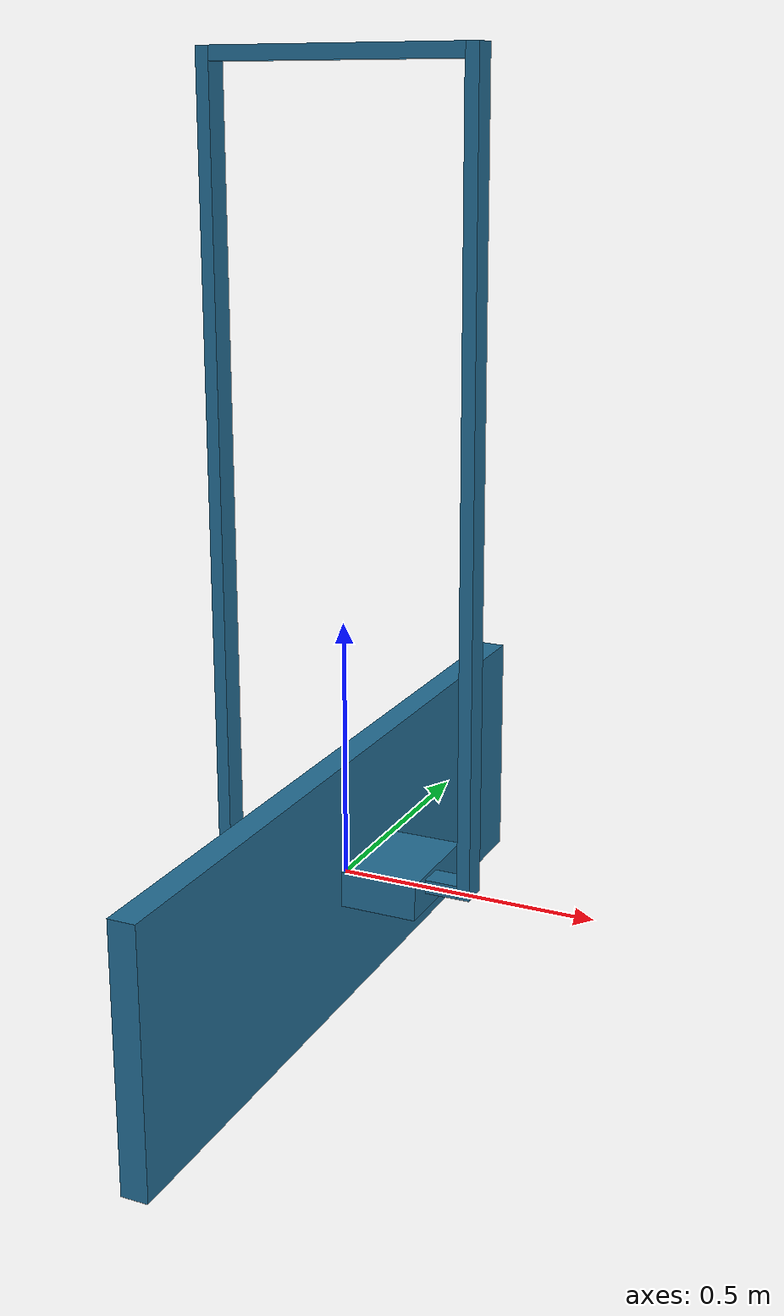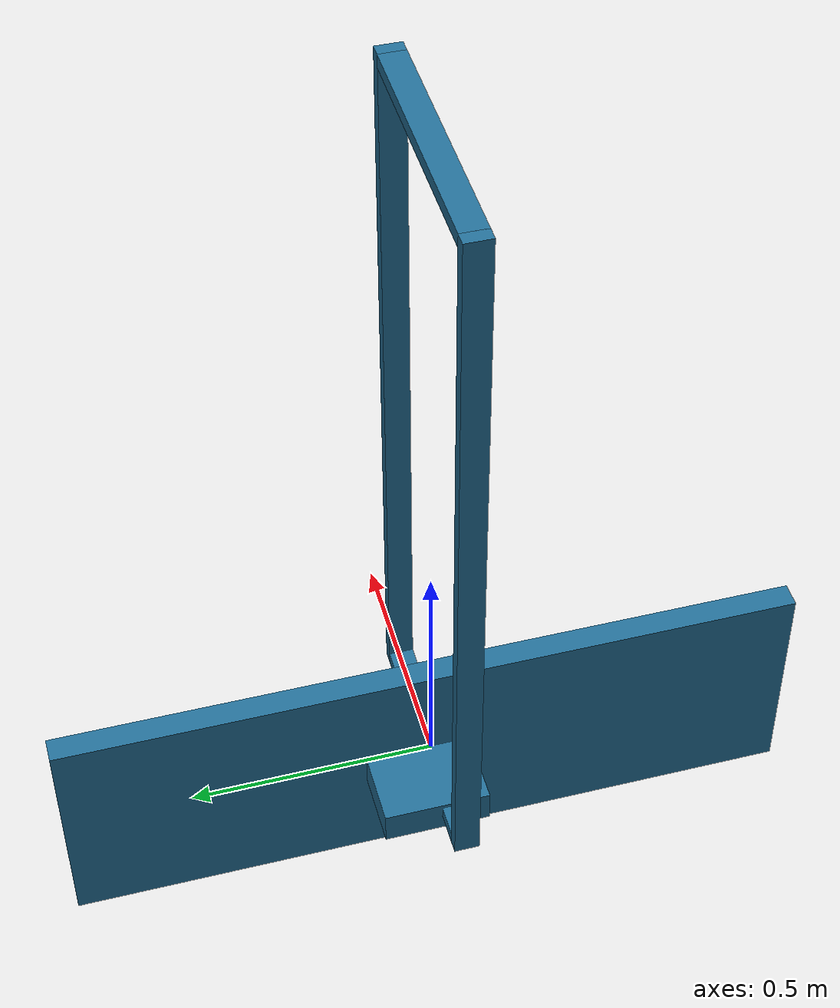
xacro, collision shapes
<?xml version="1.0"?>
<robot name="elevator_bot" xmlns:xacro="http://www.ros.org/wiki/xacro">

    <!-- Include Files -->
    <xacro:include filename="$(find elevator_bot_description)/urdf/parts/base_stage.xacro" />
    <xacro:include filename="$(find elevator_bot_description)/urdf/parts/carriage_stage.xacro" />
    <xacro:include filename="$(find elevator_bot_description)/urdf/parts/second_stage.xacro" />
    <xacro:include filename="$(find elevator_bot_description)/urdf/util/macros.xacro" />
    <xacro:include filename="$(find elevator_bot_description)/urdf/util/materials.xacro" />

    <!-- Parts of the robot -->
    <xacro:base_stage prefix="base" />
    <xacro:second_stage prefix="second" />
    <xacro:carriage_stage prefix="carriage"/>

</robot>

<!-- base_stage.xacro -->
<robot xmlns:xacro="http://www.ros.org/wiki/xacro">

    <!-- PLACEHOLDER VALUES! CHANGE THESE -->
    <xacro:property name="total_length" value="1" />
    <xacro:property name="total_width" value="1" />
    <xacro:property name="total_height" value="1" />
    <xacro:property name="total_weight" value="1" />

    <xacro:property name="bar_height" value="1" />
    <xacro:property name="bar_width" value="1" />

    <!-- This entire file is pretty much a placeholder -->
    <!-- Feel free to delete everything and start over -->
    <xacro:macro name="base_stage" params="prefix">
        <link name="base_link"></link>
        <link name="base_stage_link">
            <xacro:inertial_box mass="${total_weight}" x="${total_length}" y="${total_width}" z="${total_height}">
                <origin xyz="0 0 0" rpy="0 0 0" />
            </xacro:inertial_box>
            <visual>
                <origin  xyz="0 0 ${total_height/2}" rpy="0 -${pi/2} -${pi/2}"  />
                <geometry>
                    <mesh filename="package://elevator_bot_description/meshes/BaseStageStructure.stl" scale="0.001 0.001 0.001" />
                </geometry>
                <material name="blue" />
            </visual>
            <collision>
                <origin xyz="0 0 0" rpy="0 0 0" />
                <geometry>
                    <box size="${total_length} ${total_height} ${total_width}" />
                </geometry>
            </collision>
        </link>
        <joint name="base_stage_joint" type="fixed">
            <parent link="base_link" />
            <child link="base_stage_link" />
            <origin xyz="0 0 0" rpy="0 0 0" />
        </joint>
        <joint name="base_stage_joint" type="prismatic">
            <parent link="base_stage_link"/>
            <child link="second_stage_link" />
            <origin xyz="0 0 0" rpy="0 0 0"/>
        </joint>
    </xacro:macro>
</robot>

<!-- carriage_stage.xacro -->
<robot xmlns:xacro="http://www.ros.org/wiki/xacro">
    <!-- Carriage Properties -->

    <xacro:macro name="carriage_stage" params="prefix">
        <xacro:property name="length" value="0.3548888"/>
        <xacro:property name="width" value="0.2159"/>
        <xacro:property name="height" value="0.06985"/>
        <xacro:property name="weight" value="0.91740145454"/>

        <link name="${prefix}_stage_link">
            <xacro:inertial_box mass="${weight}" x="${length}" y="${width}" z="${height}">
                <origin xyz="0 0 0" rpy="0 0 0"/>
            </xacro:inertial_box>
            <visual>
                <origin xyz="0 0 0" rpy="0 0 0"/>
                <geometry>
                    <mesh filename="package://elevator_bot_description/meshes/CarriageStage.stl" scale="0.001 0.001 0.001"/>
                </geometry>
                <material name="blue"/>
            </visual>
            <collision>
                <origin xyz="0 ${height/2} 0" rpy="0 0 0"/>
                <geometry>
                    <box size="${length} ${width} ${height}"/>
                </geometry>
            </collision>
        </link>

    </xacro:macro>

</robot>

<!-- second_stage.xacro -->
<robot xmlns:xacro="http://www.ros.org/wiki/xacro">
    <!-- 2in (0.0508m) line height -->
    <!-- 1in (0.0254m) line width -->
    <!-- 15.5 (0.3937m) width total -->
    <!-- 47in (1.1938m) length total -->
    <!-- 4.9748lbs (2.2565kgs) weight total -->

    <!-- These are more measurement guesses because the measured size is being weird -->
    <xacro:property name="total_height" value="1.525" />
    <xacro:property name="total_width" value="0.485" />
    <xacro:property name="total_length" value="0.0508" />
    <xacro:property name="total_weight" value="2.2565" />

    <xacro:property name="bar_height" value="0.0265" />
    <xacro:property name="bar_width" value="0.0254" />

    <xacro:macro name="second_stage" params="prefix">
        <link name="second_stage_link">
            <xacro:inertial_box mass="${total_weight}" x="${total_height}" y="${total_width}" z="${total_length}">
                <origin xyz="0 0 0" rpy="0 0 0" />
            </xacro:inertial_box>
            <!-- All values here are completely made up. For your own sake, don't try to understand them -->
            <collision> <!-- Top Bar -->
                <origin xyz="0 0 ${total_height-bar_height/2+0.001}" rpy="0 0 0" />
                <geometry>
                    <box size="${total_width} ${total_length} ${bar_height}"/>
                </geometry>
            </collision>
            <collision> <!-- Bottom Bar -->
                <origin xyz="0 0 ${bar_height/2+0.001}" rpy="0 0 0" />
                <geometry>
                    <box size="${total_width} ${total_length} ${bar_height}"/>
                </geometry>
            </collision>
            <collision> <!-- Left Bar -->
                <origin xyz="${-total_width/2-bar_width/2+0.001} 0 ${total_height/2+0.001}" rpy="0 0 0" />
                <geometry>
                    <box size="${bar_width} ${total_length} ${total_height}"/>
                </geometry>
            </collision>
            <collision> <!-- Right Bar -->
                <origin xyz="${total_width/2+bar_width/2-0.001} 0 ${total_height/2+0.001}" rpy="0 0 0" />
                <geometry>
                    <box size="${bar_width} ${total_length} ${total_height}"/>
                </geometry>
            </collision>
            <visual>
                <origin xyz="${-50/123} ${-total_length/2} ${-1/16}" rpy="0 0 0" /> <!-- The model is *very slightly offset, even with @Nithin's model changes -->
                <geometry>
                    <mesh filename="package://elevator_bot_description/meshes/2ndStageStructure.stl" scale="0.001 0.001 0.001" />
                </geometry>
                <material name="blue" />
            </visual>
        </link>

        <joint name="second_stage_joint" type="prismatic">
            <parent link="second_stage_link"/>
            <child link="carriage_stage_link" />
            <origin xyz="0 0 0" rpy="0 0 0"/>
        </joint>
    </xacro:macro>
</robot>

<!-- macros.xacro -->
<robot xmlns:xacro="http://www.ros.org/wiki/xacro">

  <!-- Specify some standard inertial calculations https://en.wikipedia.org/wiki/List_of_moments_of_inertia -->
  <!-- These make use of xacro's mathematical functionality -->

  <xacro:macro name="inertial_sphere" params="mass radius *origin">
    <inertial>
      <xacro:insert_block name="origin" />
      <mass value="${mass}" />
      <inertia ixx="${(2/5) * mass * (radius*radius)}" ixy="0.0" ixz="0.0" iyy="${(2/5) * mass * (radius*radius)}" iyz="0.0" izz="${(2/5) * mass * (radius*radius)}" />
    </inertial>
  </xacro:macro>

  <xacro:macro name="inertial_box" params="mass x y z *origin">
    <inertial>
      <xacro:insert_block name="origin" />
      <mass value="${mass}" />
      <inertia ixx="${(1/12) * mass * (y*y+z*z)}" ixy="0.0" ixz="0.0" iyy="${(1/12) * mass * (x*x+z*z)}" iyz="0.0" izz="${(1/12) * mass * (x*x+y*y)}" />
    </inertial>
  </xacro:macro>

  <xacro:macro name="inertial_cylinder" params="mass length radius *origin">
    <inertial>
      <xacro:insert_block name="origin" />
      <mass value="${mass}" />
      <inertia ixx="${(1/12) * mass * (3*radius*radius + length*length)}" ixy="0.0" ixz="0.0" iyy="${(1/12) * mass * (3*radius*radius + length*length)}" iyz="0.0" izz="${(1/2) * mass * (radius*radius)}" />
    </inertial>
  </xacro:macro>

</robot>

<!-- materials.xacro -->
<robot>
  <material name="black">
    <color rgba="0.0 0.0 0.0 1.0" />
  </material>

  <material name="blue">
    <color rgba="${35/255} ${110/255} ${150/255} 1.0" />
  </material>

  <material name="green">
    <color rgba="0.0 0.8 0.0 1.0" />
  </material>

  <material name="grey">
    <color rgba="0.2 0.2 0.2 1.0" />
  </material>

  <material name="yellow">
    <color rgba="${255/255} ${215/255} ${0/255} 1" />
  </material>

  <material name="orange">
    <color rgba="${243/255} ${135/255} ${47/255} 1" />
  </material>

  <material name="brown">
    <color rgba="${222/255} ${207/255} ${195/255} 1.0" />
  </material>

  <material name="red">
    <color rgba="0.8 0.0 0.0 1.0" />
  </material>

  <material name="white">
    <color rgba="1.0 1.0 1.0 1.0" />
  </material>

  <material name="silver">
    <color rgba="0.700 0.700 0.700 1.000" />
  </material>

</robot>
